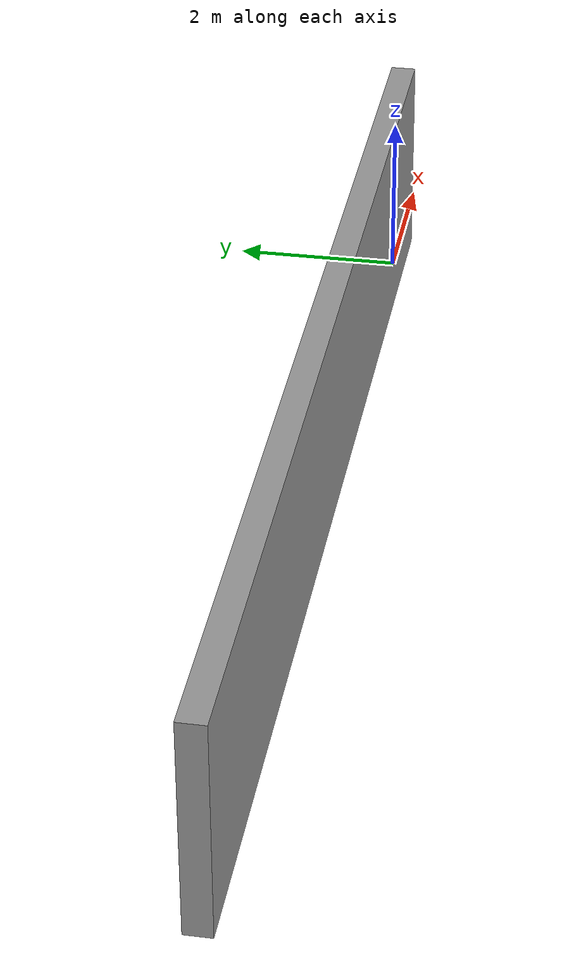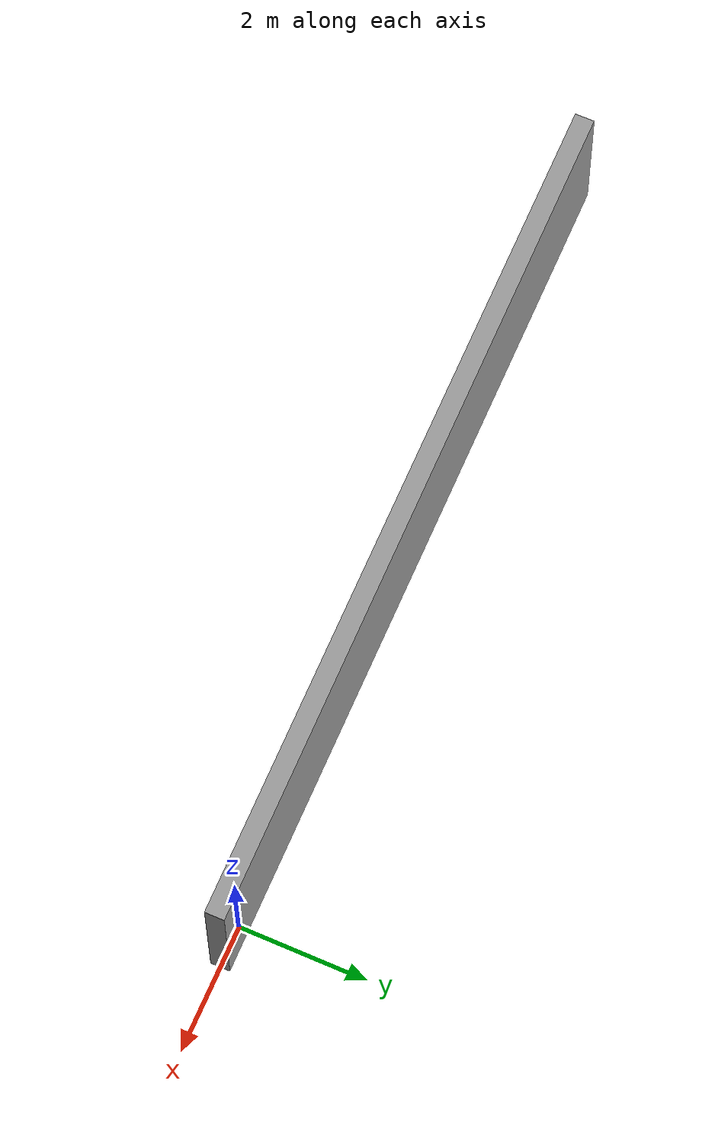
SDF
<?xml version='1.0'?>
<sdf version='1.6'>
  <model name='wall_13_03'>
    <pose frame=''>-6 0 0 0 -0 0</pose>
    <link name='Wall_10'>
      <collision name='Wall_10_Collision'>
        <geometry>
          <box>
            <size>13.3 0.3 2.5</size>
          </box>
        </geometry>
        <pose frame=''>0 0 1.25 0 -0 0</pose>
      </collision>
      <visual name='Wall_10_Visual'>
        <pose frame=''>0 0 1.25 0 -0 0</pose>
        <geometry>
          <box>
            <size>13.3 0.3 2.5</size>
          </box>
        </geometry>
        <material>
          <script>
            <uri>file://media/materials/scripts/gazebo.material</uri>
            <name>Gazebo/Grey</name>
          </script>
          <ambient>1 1 1 1</ambient>
        </material>
        <meta>
          <layer>0</layer>
        </meta>
      </visual>
      <pose frame=''>-0 0 0 0 -0 0</pose>
    </link>
    <static>1</static>
  </model>
</sdf>
